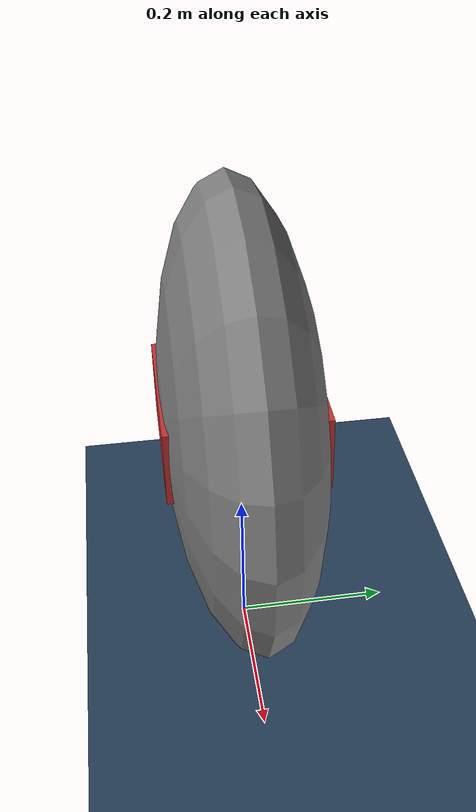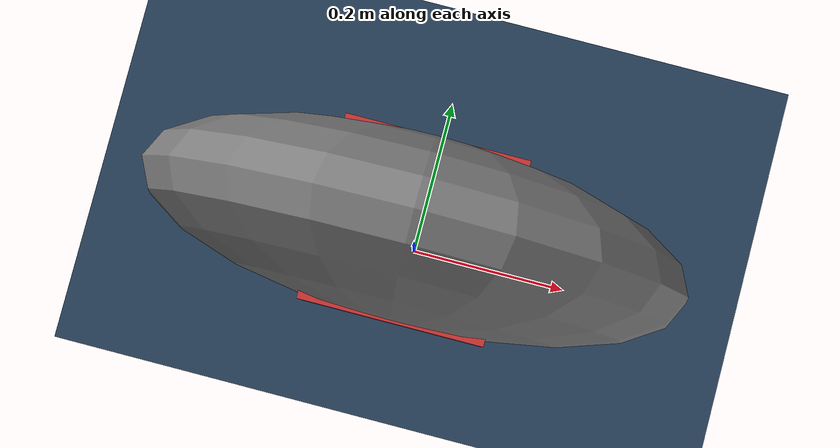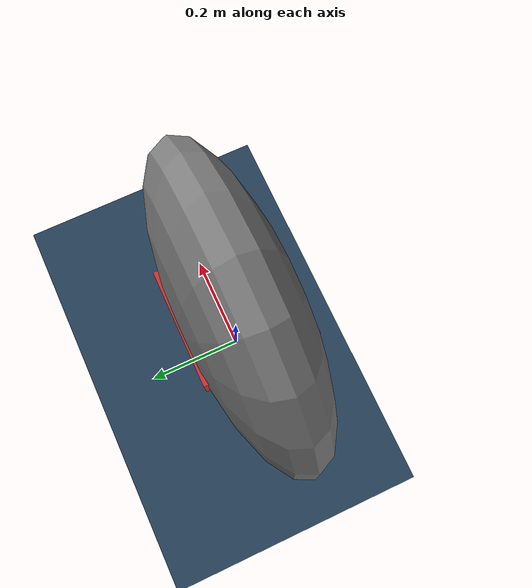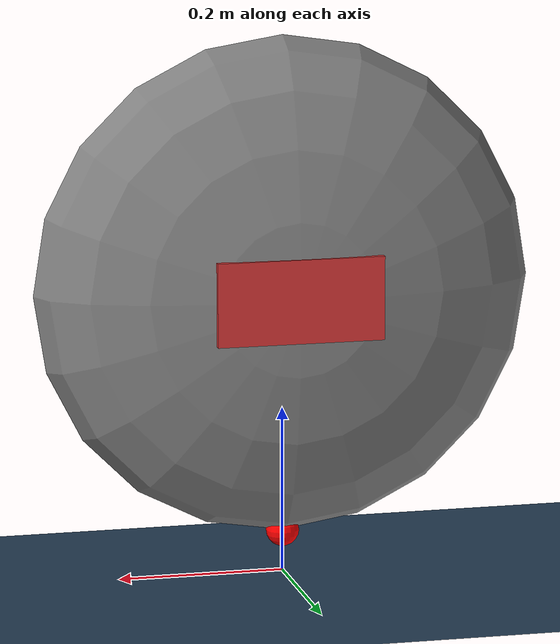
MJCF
<mujoco model="Virtual Tire Test Rig">
    <compiler angle="degree" coordinate="local"/>
    <option timestep="0.001" integrator="implicitfast" cone="elliptic"/>

    <asset>
        <texture type="skybox" builtin="gradient" rgb1="0.3 0.5 0.7" rgb2="0 0 0" width="512" height="512"/>
        <texture name="grid" type="2d" builtin="checker" rgb1="0.1 0.2 0.3" rgb2="0.2 0.3 0.4" width="512" height="512" mark="cross" markrgb="0.8 0.8 0.8"/>
        <material name="grid" texture="grid" texrepeat="0.1 0.1" texuniform="true"/>
        <texture name="tire_tex" type="2d" builtin="checker" rgb1="0.1 0.1 0.1" rgb2="0.9 0.9 0.9" width="512" height="512"/>
        <material name="tire_mat" texture="tire_tex" texrepeat="8 2" texuniform="true"/>
    </asset>

    <default>
        <!-- No global actuator defaults to avoid cross-contamination -->
    </default>

    <worldbody>
        <light pos="0 0 3" dir="0 0 -1" directional="true"/>
        <geom name="floor" type="plane" size="0 0 0.05" material="grid" friction="1 0.005 0.0001"/>

        <!-- Carriage that translates over the floor -->
        <body name="carriage" pos="0 0 0.35">
            <!-- Chase camera following the wheel -->
            <camera name="chase_cam" pos="-3 -3 1.5" xyaxes="1 -1 0 1 1 4"/>

            <!-- X and Y translation -->
            <joint name="translate_x" type="slide" axis="1 0 0" frictionloss="0.1"/>
            <joint name="translate_y" type="slide" axis="0 1 0" frictionloss="0.1"/>
            <!-- Z translation for vertical load (damped to prevent bouncing) -->
            <joint name="translate_z" type="slide" axis="0 0 1" frictionloss="0.1" damping="5000"/>

            <geom type="box" size="0.1 0.1 0.05" rgba="0.8 0.2 0.2 1" mass="50"/>

            <!-- Camber adjustment link -->
            <body name="camber_link" pos="0 0 0">
                <inertial pos="0 0 0" mass="1" diaginertia="0.01 0.01 0.01"/>
                <joint name="camber" type="hinge" axis="1 0 0" frictionloss="0.1"/>

                <!-- Steering/Yaw adjustment link -->
                <body name="steer_link" pos="0 0 0">
                    <inertial pos="0 0 0" mass="1" diaginertia="0.01 0.01 0.01"/>
                    <joint name="steer" type="hinge" axis="0 0 1" frictionloss="0.1"/>

                    <!-- The Contact Patch stays with the steer_link so it doesn't spin -->
                    <site name="contact_patch" pos="0 0 -0.3" size="0.02" rgba="1 0 0 1"/>

                    <!-- The actual Wheel -->
                    <body name="wheel" pos="0 0 0">
                        <!-- Y-axis corresponds to rolling -->
                        <joint name="spin" type="hinge" axis="0 1 0" frictionloss="0.1"/>
                        <!-- Rotate geometry by 90 deg so its rolling axis aligns with Y -->
                        <geom name="tire" type="ellipsoid" size="0.3 0.3 0.1" euler="90 0 0" material="tire_mat" mass="15" friction="1 0.005 0.0001" solref="0.08 1" condim="1"/>
                    </body>
                </body>
            </body>
        </body>
    </worldbody>

    <actuator>
        <!-- Velocity control to enforce Vx and Vy -->
        <velocity name="drive_x" joint="translate_x" kv="10000" ctrllimited="true" ctrlrange="-100 100"/>
        <velocity name="drive_y" joint="translate_y" kv="10000" ctrllimited="true" ctrlrange="-100 100"/>

        <!-- Force control for Fz (downward force). Limit needs to fully encompass 6000N load request -->
        <motor name="load_z" joint="translate_z" ctrllimited="true" ctrlrange="-100000 100000"/>

        <!-- Position control for camber and slip angle (steer) -->
        <position name="set_camber" joint="camber" kp="10000" ctrllimited="true" ctrlrange="-180 180"/>
        <position name="set_steer" joint="steer" kp="10000" ctrllimited="true" ctrlrange="-180 180"/>

        <!-- Velocity control to enforce wheel spin (Omega) -->
        <velocity name="drive_spin" joint="spin" kv="10000" ctrllimited="true" ctrlrange="-500 500"/>
    </actuator>

    <sensor>
        <!-- Measure forces at the translational and spin joints to see what the built-in contact does -->
        <jointpos joint="translate_z"/>
        <jointvel joint="translate_x"/>
        <jointvel joint="spin"/>
    </sensor>
</mujoco>
